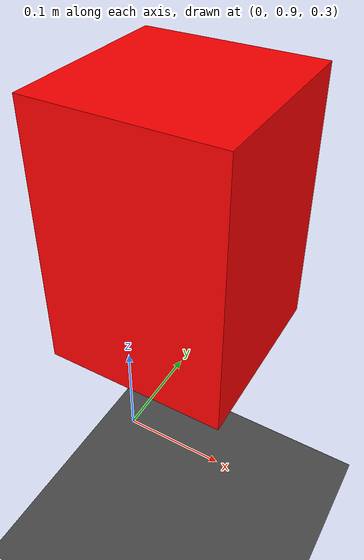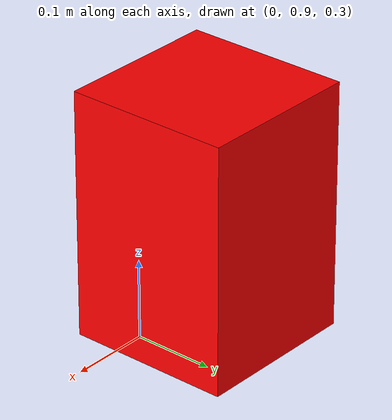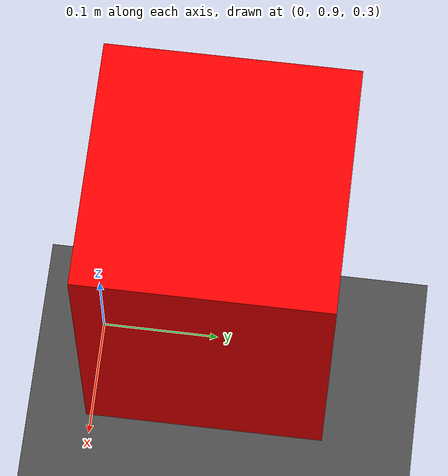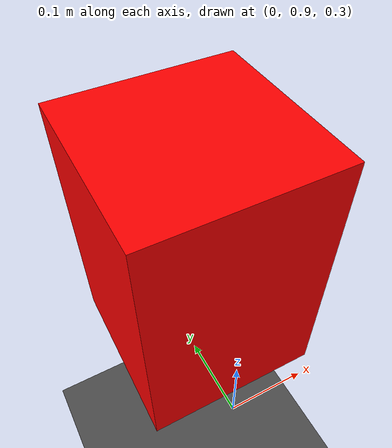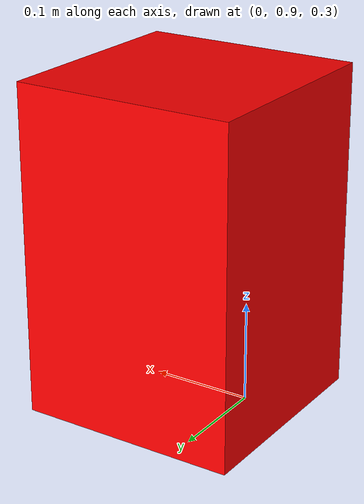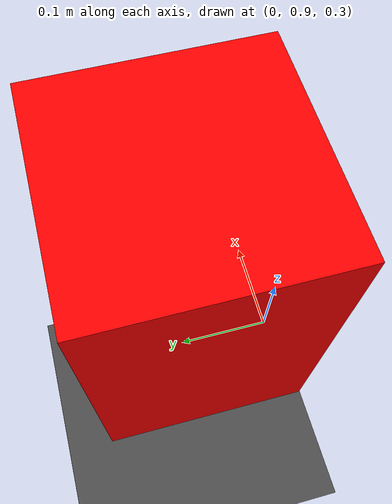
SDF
<?xml version="1.0" ?>
<sdf version='1.4'>
  <world name='default'>

    <physics type='ode'>
      <max_step_size>0.001</max_step_size>
      <real_time_factor>1</real_time_factor>
      <real_time_update_rate>1000</real_time_update_rate>
      <gravity>0 0 -9.8</gravity>
    </physics>

    <spherical_coordinates>
      <surface_model>EARTH_WGS84</surface_model>
      <latitude_deg>0</latitude_deg>
      <longitude_deg>0</longitude_deg>
      <elevation>0</elevation>
      <heading_deg>0</heading_deg>
    </spherical_coordinates>

    <!-- A global light source -->
   <scene>
      <sky>
        <clouds>
          <speed>12</speed>
        </clouds>
      </sky>
   </scene>

    <include>
      <uri>model://sun</uri>
    </include>

    <model name="ground_plane">
      <static>true</static>
      <link name="link">
        <collision name="collision">
          <geometry>
            <plane>
              <normal>0 0 1</normal>
              <size>100 100</size>
            </plane>
          </geometry>
          <surface>
            <friction>
              <ode>
                <mu>100</mu>
                <mu2>50</mu2>
              </ode>
            </friction>
          </surface>
        </collision>
        <visual name="visual">
          <cast_shadows>false</cast_shadows>
          <geometry>
            <plane>
              <normal>0 0 1</normal>
              <size>100 100</size>
            </plane>
          </geometry>
          <material>
            <script>
              <uri>model://asphalt_plane/materials/scripts</uri>
              <uri>model://asphalt_plane/materials/textures</uri>
              <name>vrc/asphalt</name>
            </script>
          </material>
        </visual>
      </link>
    </model>

    <model name='object'>
      <pose>0 1 0.5 0 0 0</pose>
      <static>false</static>
      <link name='object_link'>
        <inertial>
          <mass>1.0</mass>
          <inertia> <!-- inertias are tricky to compute -->
            <!-- http://gazebosim.org/tutorials?tut=inertia&cat=build_robot -->
            <ixx>0.008255</ixx>       <!-- for a box: ixx = 0.083 * mass * (y*y + z*z) -->
            <ixy>0.0</ixy>         <!-- for a box: ixy = 0 -->
            <ixz>0.0</ixz>         <!-- for a box: ixz = 0 -->
            <iyy>0.008255</iyy>       <!-- for a box: iyy = 0.083 * mass * (x*x + z*z) -->
            <iyz>0.0</iyz>         <!-- for a box: iyz = 0 -->
            <izz>0.005</izz>       <!-- for a box: izz = 0.083 * mass * (x*x + y*y) -->
          </inertia>
        </inertial>
        <collision name='collision'>
          <geometry>
            <box>
              <size>0.2 0.2 0.3</size>
            </box>
          </geometry>
          <max_contacts>10</max_contacts>
          <surface>
            <contact>
              <ode/>
            </contact>
            <bounce/>
          </surface>
        </collision>
        <visual name='visual'>
          <cast_shadows>0</cast_shadows>
          <geometry>
            <box>
              <size>0.2 0.2 0.3</size>
            </box>
          </geometry>
          <material>
            <ambient>1.0 0.0 0.0 1</ambient>
            <diffuse>1.0 0.0 0.0 1</diffuse>
            <specular>0.01 0.01 0.01 1</specular>
            <emissive>0 0 0 1</emissive>
          </material>
        </visual>
        <self_collide>0</self_collide>
        <kinematic>0</kinematic>
        <gravity>1</gravity>
      </link>
    </model>
    <gazebo reference='object'>
      <mu1>0.5</mu1>
      <mu2>0.5</mu2>
    </gazebo>

  </world>
</sdf>
